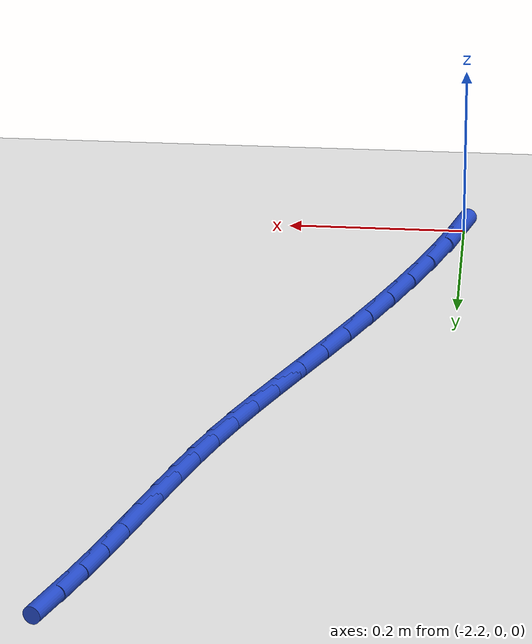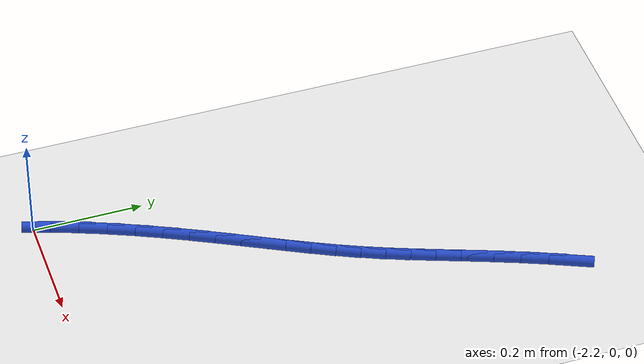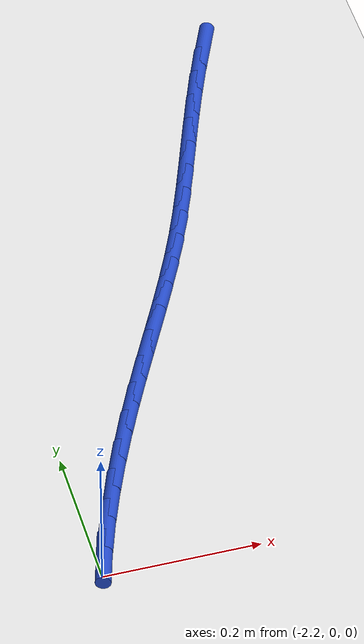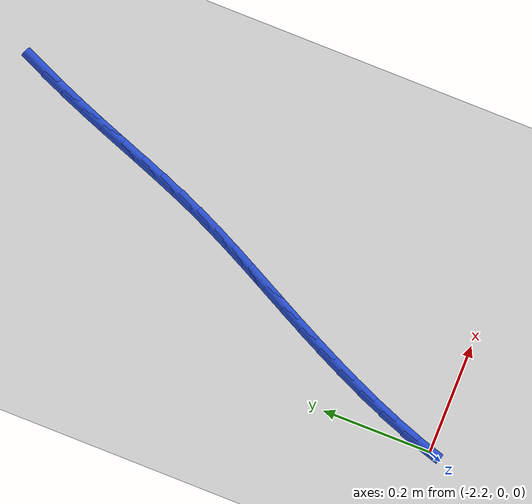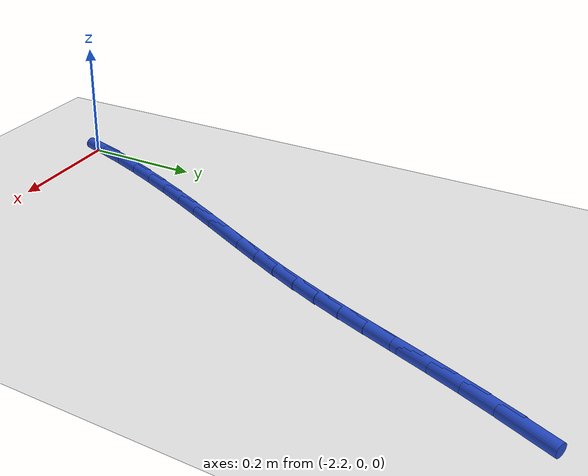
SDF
<sdf version="1.6">
 <world name="default">
  <model name="ground_plane">
   <static>1</static>
   <link name="link">
    <collision name="collision">
     <geometry><plane><normal>0 0 1</normal><size>100 100</size></plane></geometry>
     <surface><friction><ode><mu>100</mu><mu2>50</mu2></ode></friction></surface>
    </collision>
    <visual name="visual">
     <cast_shadows>0</cast_shadows>
     <geometry><plane><normal>0 0 1</normal><size>100 100</size></plane></geometry>
     <material>
      <script><uri>file://media/materials/scripts/gazebo.material</uri><name>Gazebo/WhiteGlow</name></script>
     </material>
    </visual>
   </link>
  </model>
  <model name="line">
   <link name="link_58">
    <pose>-1.82212360599077 0.8790043293096529 0.01 0 1.57 1.1612116730305337</pose>
    <collision name="collision">
     <geometry><cylinder><radius>0.01</radius><length>0.08</length></cylinder></geometry>
    </collision>
    <visual name="visual">
     <material>
      <script><name>Gazebo/Blue</name><uri>file://media/materials/scripts/gazebo.material</uri></script>
     </material>
     <geometry><cylinder><radius>0.01</radius><length>0.08</length></cylinder></geometry>
    </visual>
   </link>
   <link name="link_59">
    <pose>-1.841625740555175 0.834082766076162 0.01 0 1.57 1.1863079842871744</pose>
    <collision name="collision">
     <geometry><cylinder><radius>0.01</radius><length>0.08</length></cylinder></geometry>
    </collision>
    <visual name="visual">
     <material>
      <script><name>Gazebo/Blue</name><uri>file://media/materials/scripts/gazebo.material</uri></script>
     </material>
     <geometry><cylinder><radius>0.01</radius><length>0.08</length></cylinder></geometry>
    </visual>
   </link>
   <link name="link_60">
    <pose>-1.8595241318148423 0.789848410587831 0.01 0 1.57 1.204922085759529</pose>
    <collision name="collision">
     <geometry><cylinder><radius>0.01</radius><length>0.08</length></cylinder></geometry>
    </collision>
    <visual name="visual">
     <material>
      <script><name>Gazebo/Blue</name><uri>file://media/materials/scripts/gazebo.material</uri></script>
     </material>
     <geometry><cylinder><radius>0.01</radius><length>0.08</length></cylinder></geometry>
    </visual>
   </link>
   <link name="link_61">
    <pose>-1.8762101031161145 0.7462960392381348 0.01 0 1.57 1.2163152799633052</pose>
    <collision name="collision">
     <geometry><cylinder><radius>0.01</radius><length>0.08</length></cylinder></geometry>
    </collision>
    <visual name="visual">
     <material>
      <script><name>Gazebo/Blue</name><uri>file://media/materials/scripts/gazebo.material</uri></script>
     </material>
     <geometry><cylinder><radius>0.01</radius><length>0.08</length></cylinder></geometry>
    </visual>
   </link>
   <link name="link_62">
    <pose>-1.8920860550599907 0.7034013903953374 0.01 0 1.57 1.2199239105358493</pose>
    <collision name="collision">
     <geometry><cylinder><radius>0.01</radius><length>0.08</length></cylinder></geometry>
    </collision>
    <visual name="visual">
     <material>
      <script><name>Gazebo/Blue</name><uri>file://media/materials/scripts/gazebo.material</uri></script>
     </material>
     <geometry><cylinder><radius>0.01</radius><length>0.08</length></cylinder></geometry>
    </visual>
   </link>
   <link name="link_63">
    <pose>-1.9075543882474701 0.6611402024277003 0.01 0 1.57 1.215321294217885</pose>
    <collision name="collision">
     <geometry><cylinder><radius>0.01</radius><length>0.08</length></cylinder></geometry>
    </collision>
    <visual name="visual">
     <material>
      <script><name>Gazebo/Blue</name><uri>file://media/materials/scripts/gazebo.material</uri></script>
     </material>
     <geometry><cylinder><radius>0.01</radius><length>0.08</length></cylinder></geometry>
    </visual>
   </link>
   <link name="link_64">
    <pose>-1.9230175032795513 0.619488213703487 0.01 0 1.57 1.202238526469194</pose>
    <collision name="collision">
     <geometry><cylinder><radius>0.01</radius><length>0.08</length></cylinder></geometry>
    </collision>
    <visual name="visual">
     <material>
      <script><name>Gazebo/Blue</name><uri>file://media/materials/scripts/gazebo.material</uri></script>
     </material>
     <geometry><cylinder><radius>0.01</radius><length>0.08</length></cylinder></geometry>
    </visual>
   </link>
   <link name="link_65">
    <pose>-1.938877800757235 0.5784211625909597 0.01 0 1.57 1.1805949535204254</pose>
    <collision name="collision">
     <geometry><cylinder><radius>0.01</radius><length>0.08</length></cylinder></geometry>
    </collision>
    <visual name="visual">
     <material>
      <script><name>Gazebo/Blue</name><uri>file://media/materials/scripts/gazebo.material</uri></script>
     </material>
     <geometry><cylinder><radius>0.01</radius><length>0.08</length></cylinder></geometry>
    </visual>
   </link>
   <link name="link_66">
    <pose>-1.9555376812815186 0.5379147874583806 0.01 0 1.57 1.1522814875554181</pose>
    <collision name="collision">
     <geometry><cylinder><radius>0.01</radius><length>0.08</length></cylinder></geometry>
    </collision>
    <visual name="visual">
     <material>
      <script><name>Gazebo/Blue</name><uri>file://media/materials/scripts/gazebo.material</uri></script>
     </material>
     <geometry><cylinder><radius>0.01</radius><length>0.08</length></cylinder></geometry>
    </visual>
   </link>
   <link name="link_67">
    <pose>-1.9733304780825713 0.49791231112431666 0.01 0 1.57 1.127555800034284</pose>
    <collision name="collision">
     <geometry><cylinder><radius>0.01</radius><length>0.08</length></cylinder></geometry>
    </collision>
    <visual name="visual">
     <material>
      <script><name>Gazebo/Blue</name><uri>file://media/materials/scripts/gazebo.material</uri></script>
     </material>
     <geometry><cylinder><radius>0.01</radius><length>0.08</length></cylinder></geometry>
    </visual>
   </link>
   <link name="link_68">
    <pose>-1.9921969406802522 0.45817213577511434 0.01 0 1.57 1.1101692776403407</pose>
    <collision name="collision">
     <geometry><cylinder><radius>0.01</radius><length>0.08</length></cylinder></geometry>
    </collision>
    <visual name="visual">
     <material>
      <script><name>Gazebo/Blue</name><uri>file://media/materials/scripts/gazebo.material</uri></script>
     </material>
     <geometry><cylinder><radius>0.01</radius><length>0.08</length></cylinder></geometry>
    </visual>
   </link>
   <link name="link_69">
    <pose>-2.011939294908904 0.41838744939066885 0.01 0 1.57 1.1001518261996726</pose>
    <collision name="collision">
     <geometry><cylinder><radius>0.01</radius><length>0.08</length></cylinder></geometry>
    </collision>
    <visual name="visual">
     <material>
      <script><name>Gazebo/Blue</name><uri>file://media/materials/scripts/gazebo.material</uri></script>
     </material>
     <geometry><cylinder><radius>0.01</radius><length>0.08</length></cylinder></geometry>
    </visual>
   </link>
   <link name="link_70">
    <pose>-2.032359609537484 0.37825136600760256 0.01 0 1.57 1.0973302186261464</pose>
    <collision name="collision">
     <geometry><cylinder><radius>0.01</radius><length>0.08</length></cylinder></geometry>
    </collision>
    <visual name="visual">
     <material>
      <script><name>Gazebo/Blue</name><uri>file://media/materials/scripts/gazebo.material</uri></script>
     </material>
     <geometry><cylinder><radius>0.01</radius><length>0.08</length></cylinder></geometry>
    </visual>
   </link>
   <link name="link_71">
    <pose>-2.053259953334948 0.3374569996625369 0.01 0 1.57 1.1013671255129809</pose>
    <collision name="collision">
     <geometry><cylinder><radius>0.01</radius><length>0.08</length></cylinder></geometry>
    </collision>
    <visual name="visual">
     <material>
      <script><name>Gazebo/Blue</name><uri>file://media/materials/scripts/gazebo.material</uri></script>
     </material>
     <geometry><cylinder><radius>0.01</radius><length>0.08</length></cylinder></geometry>
    </visual>
   </link>
   <link name="link_72">
    <pose>-2.0744423950702515 0.29569746439209443 0.01 0 1.57 1.1117920670356571</pose>
    <collision name="collision">
     <geometry><cylinder><radius>0.01</radius><length>0.08</length></cylinder></geometry>
    </collision>
    <visual name="visual">
     <material>
      <script><name>Gazebo/Blue</name><uri>file://media/materials/scripts/gazebo.material</uri></script>
     </material>
     <geometry><cylinder><radius>0.01</radius><length>0.08</length></cylinder></geometry>
    </visual>
   </link>
   <link name="link_73">
    <pose>-2.09570900351235 0.2526658742328966 0.01 0 1.57 1.127854771322869</pose>
    <collision name="collision">
     <geometry><cylinder><radius>0.01</radius><length>0.08</length></cylinder></geometry>
    </collision>
    <visual name="visual">
     <material>
      <script><name>Gazebo/Blue</name><uri>file://media/materials/scripts/gazebo.material</uri></script>
     </material>
     <geometry><cylinder><radius>0.01</radius><length>0.08</length></cylinder></geometry>
    </visual>
   </link>
   <link name="link_74">
    <pose>-2.1168410883079134 0.20811903797740663 0.01 0 1.57 1.1481061909104637</pose>
    <collision name="collision">
     <geometry><cylinder><radius>0.01</radius><length>0.08</length></cylinder></geometry>
    </collision>
    <visual name="visual">
     <material>
      <script><name>Gazebo/Blue</name><uri>file://media/materials/scripts/gazebo.material</uri></script>
     </material>
     <geometry><cylinder><radius>0.01</radius><length>0.08</length></cylinder></geometry>
    </visual>
   </link>
   <link name="link_75">
    <pose>-2.13749004567049 0.1622123749319799 0.01 0 1.57 1.1723530104250717</pose>
    <collision name="collision">
     <geometry><cylinder><radius>0.01</radius><length>0.08</length></cylinder></geometry>
    </collision>
    <visual name="visual">
     <material>
      <script><name>Gazebo/Blue</name><uri>file://media/materials/scripts/gazebo.material</uri></script>
     </material>
     <geometry><cylinder><radius>0.01</radius><length>0.08</length></cylinder></geometry>
    </visual>
   </link>
   <link name="link_76">
    <pose>-2.157257119453514 0.11525518578043133 0.01 0 1.57 1.2010515465363691</pose>
    <collision name="collision">
     <geometry><cylinder><radius>0.01</radius><length>0.08</length></cylinder></geometry>
    </collision>
    <visual name="visual">
     <material>
      <script><name>Gazebo/Blue</name><uri>file://media/materials/scripts/gazebo.material</uri></script>
     </material>
     <geometry><cylinder><radius>0.01</radius><length>0.08</length></cylinder></geometry>
    </visual>
   </link>
   <link name="link_77">
    <pose>-2.1757434463692467 0.0675570999454653 0.01 0 1.57 1.2348353678015438</pose>
    <collision name="collision">
     <geometry><cylinder><radius>0.01</radius><length>0.08</length></cylinder></geometry>
    </collision>
    <visual name="visual">
     <material>
      <script><name>Gazebo/Blue</name><uri>file://media/materials/scripts/gazebo.material</uri></script>
     </material>
     <geometry><cylinder><radius>0.01</radius><length>0.08</length></cylinder></geometry>
    </visual>
   </link>
   <link name="link_78">
    <pose>-2.1925501631299484 0.019427746849784346 0.01 0 1.57 1.2745370514425567</pose>
    <collision name="collision">
     <geometry><cylinder><radius>0.01</radius><length>0.08</length></cylinder></geometry>
    </collision>
    <visual name="visual">
     <material>
      <script><name>Gazebo/Blue</name><uri>file://media/materials/scripts/gazebo.material</uri></script>
     </material>
     <geometry><cylinder><radius>0.01</radius><length>0.08</length></cylinder></geometry>
    </visual>
   </link>
  </model>
 </world>
</sdf>
